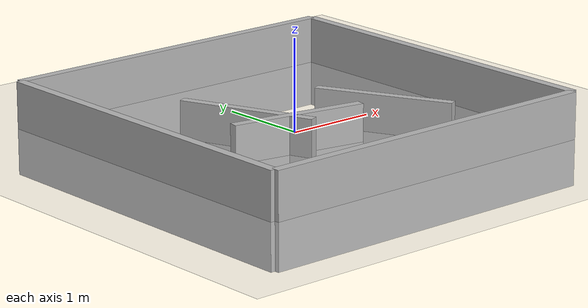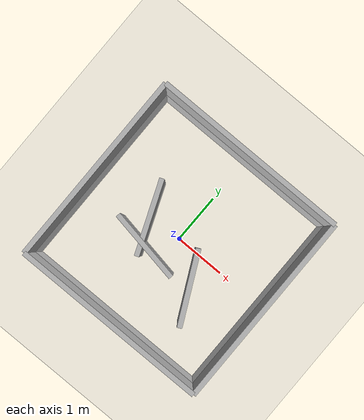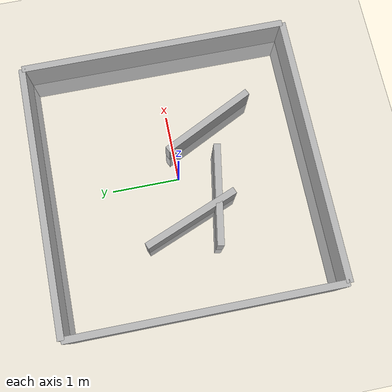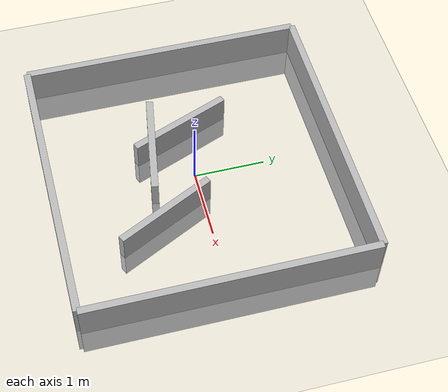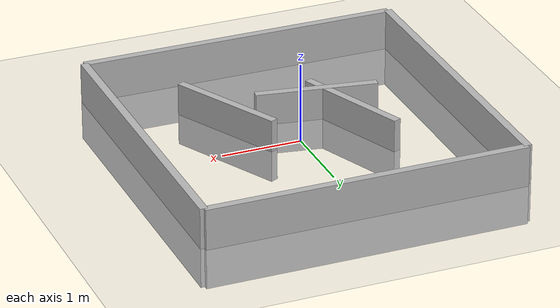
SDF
<sdf version="1.8">
 <world name="demo">
  <plugin filename="ignition-gazebo-physics-system" name="ignition::gazebo::systems::Physics"/>
  <plugin filename="ignition-gazebo-sensors-system" name="ignition::gazebo::systems::Sensors">
   <render_engine>ogre2</render_engine>
  </plugin>
  <plugin filename="ignition-gazebo-scene-broadcaster-system" name="ignition::gazebo::systems::SceneBroadcaster"/>
  <plugin filename="ignition-gazebo-user-commands-system" name="ignition::gazebo::systems::UserCommands"/>
  <light name="sun" type="directional">
   <pose>0 0 10 0 0 0</pose>
   <diffuse>0.8 0.8 0.8 1</diffuse>
   <specular>0.2 0.2 0.2 1</specular>
   <attenuation>
    <range>1000</range>
    <constant>0.9</constant>
    <linear>0.01</linear>
    <quadratic>0.001</quadratic>
   </attenuation>
   <direction>-0.5 0.1 -0.9</direction>
  </light>
  <model name="ground_plane">
   <static>true</static>
   <link name="link">
    <collision name="collision">
     <geometry><plane><normal>0 0 1</normal><size>100 100</size></plane></geometry>
    </collision>
    <visual name="visual">
     <geometry><plane><normal>0 0 1</normal><size>100 100</size></plane></geometry>
     <material>
      <ambient>0.8 0.8 0.8 1</ambient>
      <diffuse>0.8 0.8 0.8 1</diffuse>
      <specular>0.8 0.8 0.8 1</specular>
     </material>
    </visual>
   </link>
  </model>
  <model name="fixed_wall_north">
   <static>true</static>
   <link name="link">
    <pose>0 2 0 0 0 0</pose>
    <collision name="collision"><geometry><box><size>4 0.1 1</size></box></geometry></collision>
    <visual name="visual"><geometry><box><size>4 0.1 1</size></box></geometry></visual>
   </link>
  </model>
  <model name="fixed_wall_south">
   <static>true</static>
   <link name="link">
    <pose>0 -2 0 0 0 0</pose>
    <collision name="collision"><geometry><box><size>4 0.1 1</size></box></geometry></collision>
    <visual name="visual"><geometry><box><size>4 0.1 1</size></box></geometry></visual>
   </link>
  </model>
  <model name="fixed_wall_east">
   <static>true</static>
   <link name="link">
    <pose>2 0 0 0 0 1.5708</pose>
    <collision name="collision"><geometry><box><size>4 0.1 1</size></box></geometry></collision>
    <visual name="visual"><geometry><box><size>4 0.1 1</size></box></geometry></visual>
   </link>
  </model>
  <model name="fixed_wall_west">
   <static>true</static>
   <link name="link">
    <pose>-2 0 0 0 0 1.5708</pose>
    <collision name="collision"><geometry><box><size>4 0.1 1</size></box></geometry></collision>
    <visual name="visual"><geometry><box><size>4 0.1 1</size></box></geometry></visual>
   </link>
  </model>
  <model name="random_wall_0">
   <static>true</static>
   <link name="link">
    <pose>0.71 -0.58 0 0 0 2.03</pose>
    <collision name="collision"><geometry><box><size>1.5 0.1 0.8</size></box></geometry></collision>
    <visual name="visual"><geometry><box><size>1.5 0.1 0.8</size></box></geometry></visual>
   </link>
  </model>
  <model name="random_wall_1">
   <static>true</static>
   <link name="link">
    <pose>-0.41 -0.51 0 0 0 2.97</pose>
    <collision name="collision"><geometry><box><size>1.5 0.1 0.8</size></box></geometry></collision>
    <visual name="visual"><geometry><box><size>1.5 0.1 0.8</size></box></geometry></visual>
   </link>
  </model>
  <model name="random_wall_2">
   <static>true</static>
   <link name="link">
    <pose>-0.68 -0.05 0 0 0 1.95</pose>
    <collision name="collision"><geometry><box><size>1.5 0.1 0.8</size></box></geometry></collision>
    <visual name="visual"><geometry><box><size>1.5 0.1 0.8</size></box></geometry></visual>
   </link>
  </model>
 </world>
</sdf>
